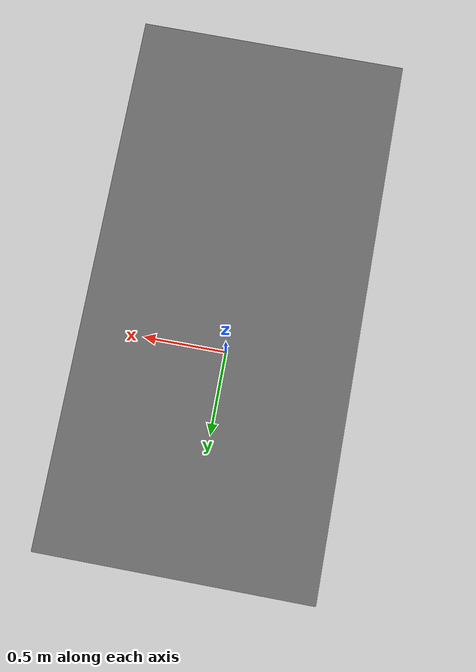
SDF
<sdf version="1.6">
  <model name="virtual_obstacle">
    <static>true</static>

    <!-- Obstacle block -->
    <link name="block">
      <visual name="block_visual">
        <geometry>
          <box>
            <size>1 2 1.5</size>
          </box>
        </geometry>
        <material>
          <ambient>0.4 0.4 0.4 1</ambient>
          <diffuse>0.4 0.4 0.4 1</diffuse>
        </material>
        <pose>0 0 1 0 0 0</pose> <!-- centered at (0,0) and 1m above ground -->
      </visual>
    </link>
  </model>
</sdf>
